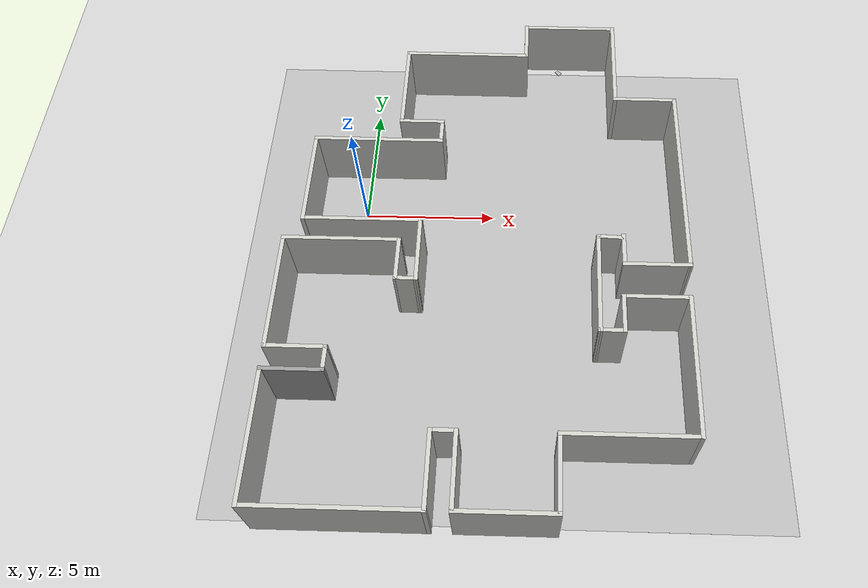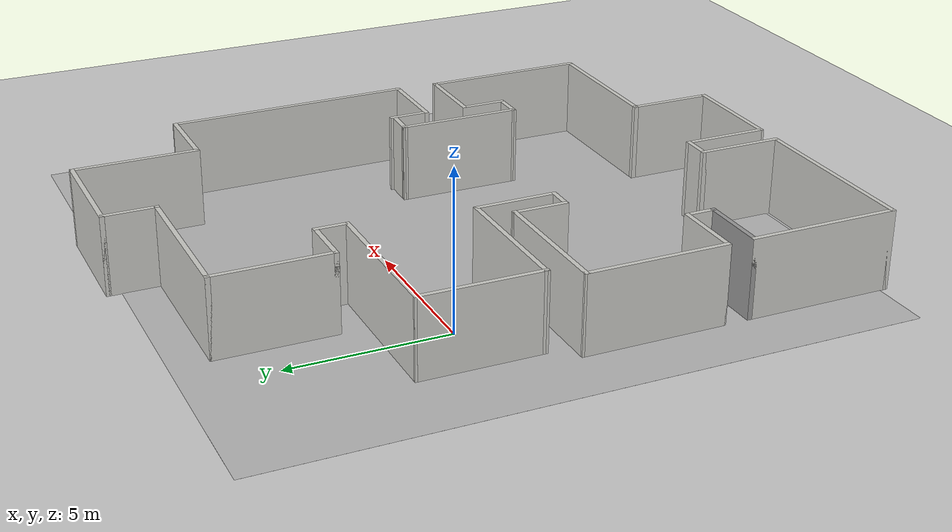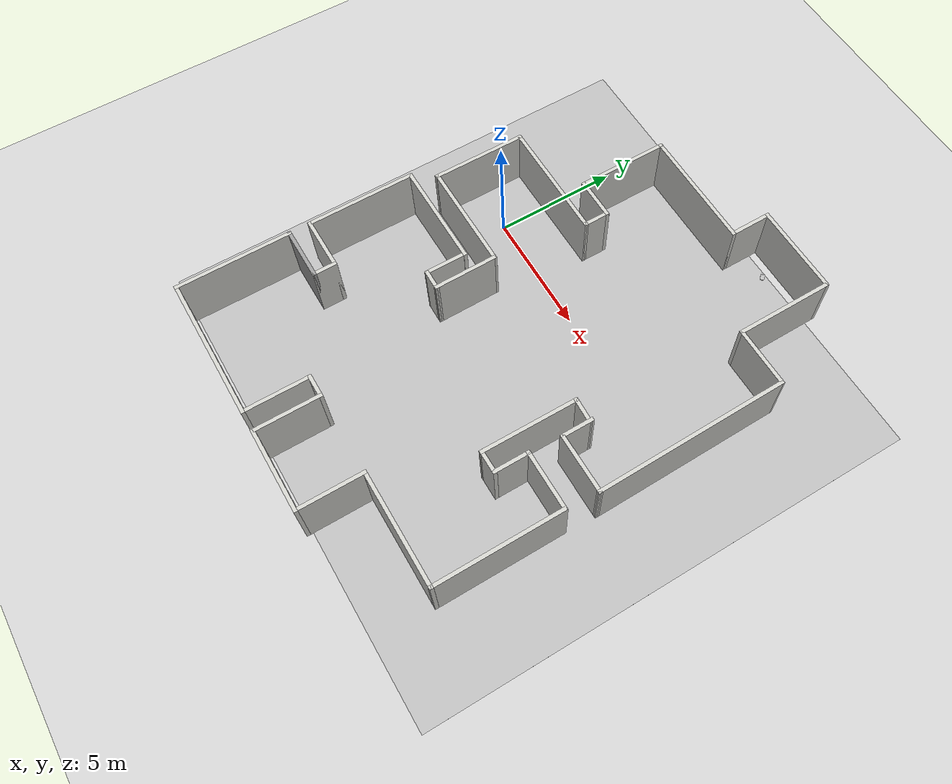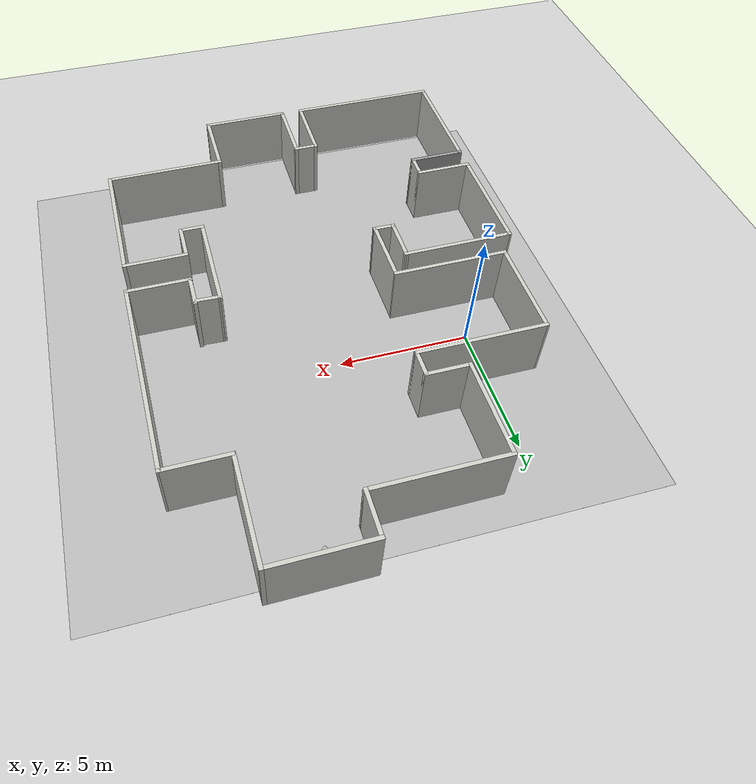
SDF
<sdf version="1.6">
 <world name="default">
  <model name="ground_plane">
   <static>1</static>
   <link name="link">
    <collision name="collision">
     <geometry><plane><normal>0 0 1</normal><size>100 100</size></plane></geometry>
     <surface><friction><ode><mu>100</mu><mu2>50</mu2></ode></friction></surface>
    </collision>
    <visual name="visual">
     <cast_shadows>0</cast_shadows>
     <geometry><plane><normal>0 0 1</normal><size>100 100</size></plane></geometry>
     <material>
      <script><uri>file://media/materials/scripts/gazebo.material</uri><name>Gazebo/Grey</name></script>
     </material>
    </visual>
   </link>
  </model>
  <model name="six_rooms_mathias">
   <model name="six_rooms">
    <model name="six_rooms">
     <pose>3e-06 -2e-06 0 0 -0 0</pose>
     <link name="Wall_10">
      <collision name="Wall_10_Collision">
       <geometry><box><size>2.25 0.15 2.5</size></box></geometry>
       <pose>0 0 1.25 0 -0 0</pose>
      </collision>
      <visual name="Wall_10_Visual">
       <pose>0 0 1.25 0 -0 0</pose>
       <geometry><box><size>2.25 0.15 2.5</size></box></geometry>
       <material>
        <script><uri>file://media/materials/scripts/gazebo.material</uri><name>Gazebo/CeilingTiled</name></script>
        <ambient>1 1 1 1</ambient>
       </material>
       <meta><layer>0</layer></meta>
      </visual>
      <pose>4.825 -6.31896 0 0 -0 1.5708</pose>
     </link>
     <link name="Wall_11">
      <collision name="Wall_11_Collision">
       <geometry><box><size>1 0.15 2.5</size></box></geometry>
       <pose>0 0 1.25 0 -0 0</pose>
      </collision>
      <visual name="Wall_11_Visual">
       <pose>0 0 1.25 0 -0 0</pose>
       <geometry><box><size>1 0.15 2.5</size></box></geometry>
       <material>
        <script><uri>file://media/materials/scripts/gazebo.material</uri><name>Gazebo/CeilingTiled</name></script>
        <ambient>1 1 1 1</ambient>
       </material>
       <meta><layer>0</layer></meta>
      </visual>
      <pose>5.25 -5.26896 0 0 -0 0</pose>
     </link>
     <link name="Wall_12">
      <collision name="Wall_12_Collision">
       <geometry><box><size>2.25 0.15 2.5</size></box></geometry>
       <pose>0 0 1.25 0 -0 0</pose>
      </collision>
      <visual name="Wall_12_Visual">
       <pose>0 0 1.25 0 -0 0</pose>
       <geometry><box><size>2.25 0.15 2.5</size></box></geometry>
       <material>
        <script><uri>file://media/materials/scripts/gazebo.material</uri><name>Gazebo/Grey</name></script>
        <ambient>1 1 1 1</ambient>
       </material>
       <meta><layer>0</layer></meta>
      </visual>
      <pose>5.675 -6.31896 0 0 -0 -1.5708</pose>
     </link>
     <link name="Wall_13">
      <collision name="Wall_13_Collision">
       <geometry><box><size>4.75 0.15 2.5</size></box></geometry>
       <pose>0 0 1.25 0 -0 0</pose>
      </collision>
      <visual name="Wall_13_Visual">
       <pose>0 0 1.25 0 -0 0</pose>
       <geometry><box><size>4.75 0.15 2.5</size></box></geometry>
       <material>
        <script><uri>file://media/materials/scripts/gazebo.material</uri><name>Gazebo/CeilingTiled</name></script>
        <ambient>1 1 1 1</ambient>
       </material>
       <meta><layer>0</layer></meta>
      </visual>
      <pose>7.975 -7.36896 0 0 -0 0</pose>
     </link>
     <link name="Wall_14">
      <collision name="Wall_14_Collision">
       <geometry><box><size>6 0.15 2.5</size></box></geometry>
       <pose>0 0 1.25 0 -0 0</pose>
      </collision>
      <visual name="Wall_14_Visual">
       <pose>0 0 1.25 0 -0 0</pose>
       <geometry><box><size>6 0.15 2.5</size></box></geometry>
       <material>
        <script><uri>file://media/materials/scripts/gazebo.material</uri><name>Gazebo/CeilingTiled</name></script>
        <ambient>1 1 1 1</ambient>
       </material>
       <meta><layer>0</layer></meta>
      </visual>
      <pose>10.275 -4.44396 0 0 -0 1.5708</pose>
     </link>
     <link name="Wall_15">
      <collision name="Wall_15_Collision">
       <geometry><box><size>2.75 0.15 2.5</size></box></geometry>
       <pose>0 0 1.25 0 -0 0</pose>
      </collision>
      <visual name="Wall_15_Visual">
       <pose>0 0 1.25 0 -0 0</pose>
       <geometry><box><size>2.75 0.15 2.5</size></box></geometry>
       <material>
        <script><uri>file://media/materials/scripts/gazebo.material</uri><name>Gazebo/CeilingTiled</name></script>
        <ambient>1 1 1 1</ambient>
       </material>
       <meta><layer>0</layer></meta>
      </visual>
      <pose>8.975 -1.51896 0 0 -0 3.14159</pose>
     </link>
     <link name="Wall_16">
      <collision name="Wall_16_Collision">
       <geometry><box><size>1 0.15 2.5</size></box></geometry>
       <pose>0 0 1.25 0 -0 0</pose>
      </collision>
      <visual name="Wall_16_Visual">
       <pose>0 0 1.25 0 -0 0</pose>
       <geometry><box><size>1 0.15 2.5</size></box></geometry>
       <material>
        <script><uri>file://media/materials/scripts/gazebo.material</uri><name>Gazebo/CeilingTiled</name></script>
        <ambient>1 1 1 1</ambient>
       </material>
       <meta><layer>0</layer></meta>
      </visual>
      <pose>7.675 -1.09396 0 0 -0 1.5708</pose>
     </link>
     <link name="Wall_17">
      <collision name="Wall_17_Collision">
       <geometry><box><size>2.66863 0.15 2.5</size></box></geometry>
       <pose>0 0 1.25 0 -0 0</pose>
      </collision>
      <visual name="Wall_17_Visual">
       <pose>0 0 1.25 0 -0 0</pose>
       <geometry><box><size>2.66863 0.15 2.5</size></box></geometry>
       <material>
        <script><uri>file://media/materials/scripts/gazebo.material</uri><name>Gazebo/CeilingTiled</name></script>
        <ambient>1 1 1 1</ambient>
       </material>
       <meta><layer>0</layer></meta>
      </visual>
      <pose>8.93431 -0.668964 0 0 -0 0</pose>
     </link>
     <link name="Wall_18">
      <collision name="Wall_18_Collision">
       <geometry><box><size>3.5 0.15 2.5</size></box></geometry>
       <pose>0 0 1.25 0 -0 0</pose>
      </collision>
      <visual name="Wall_18_Visual">
       <pose>0 0 1.25 0 -0 0</pose>
       <geometry><box><size>3.5 0.15 2.5</size></box></geometry>
       <material>
        <script><uri>file://media/materials/scripts/gazebo.material</uri><name>Gazebo/CeilingTiled</name></script>
        <ambient>1 1 1 1</ambient>
       </material>
       <meta><layer>0</layer></meta>
      </visual>
      <pose>10.275 1.00604 0 0 -0 1.5708</pose>
     </link>
     <link name="Wall_19">
      <collision name="Wall_19_Collision">
       <geometry><box><size>2.66863 0.15 2.5</size></box></geometry>
       <pose>0 0 1.25 0 -0 0</pose>
      </collision>
      <visual name="Wall_19_Visual">
       <pose>0 0 1.25 0 -0 0</pose>
       <geometry><box><size>2.66863 0.15 2.5</size></box></geometry>
       <material>
        <script><uri>file://media/materials/scripts/gazebo.material</uri><name>Gazebo/CeilingTiled</name></script>
        <ambient>1 1 1 1</ambient>
       </material>
       <meta><layer>0</layer></meta>
      </visual>
      <pose>8.93431 2.68104 0 0 -0 3.14159</pose>
     </link>
     <link name="Wall_2">
      <collision name="Wall_2_Collision">
       <geometry><box><size>5 0.15 2.5</size></box></geometry>
       <pose>0 0 1.25 0 -0 0</pose>
      </collision>
      <visual name="Wall_2_Visual">
       <pose>0 0 1.25 0 -0 0</pose>
       <geometry><box><size>5 0.15 2.5</size></box></geometry>
       <material>
        <script><uri>file://media/materials/scripts/gazebo.material</uri><name>Gazebo/CeilingTiled</name></script>
        <ambient>1 1 1 1</ambient>
       </material>
       <meta><layer>0</layer></meta>
      </visual>
      <pose>-4.125 -4.34396 0 0 -0 -1.5708</pose>
     </link>
     <link name="Wall_20">
      <collision name="Wall_20_Collision">
       <geometry><box><size>4.75 0.15 2.5</size></box></geometry>
       <pose>0 0 1.25 0 -0 0</pose>
      </collision>
      <visual name="Wall_20_Visual">
       <pose>0 0 1.25 0 -0 0</pose>
       <geometry><box><size>4.75 0.15 2.5</size></box></geometry>
       <material>
        <script><uri>file://media/materials/scripts/gazebo.material</uri><name>Gazebo/CeilingTiled</name></script>
        <ambient>1 1 1 1</ambient>
       </material>
       <meta><layer>0</layer></meta>
      </visual>
      <pose>7.675 4.98104 0 0 -0 1.5708</pose>
     </link>
     <link name="Wall_21">
      <collision name="Wall_21_Collision">
       <geometry><box><size>5.25 0.15 2.5</size></box></geometry>
       <pose>0 0 1.25 0 -0 0</pose>
      </collision>
      <visual name="Wall_21_Visual">
       <pose>0 0 1.25 0 -0 0</pose>
       <geometry><box><size>5.25 0.15 2.5</size></box></geometry>
       <material>
        <script><uri>file://media/materials/scripts/gazebo.material</uri><name>Gazebo/CeilingTiled</name></script>
        <ambient>1 1 1 1</ambient>
       </material>
       <meta><layer>0</layer></meta>
      </visual>
      <pose>5.125 7.28104 0 0 -0 3.14159</pose>
     </link>
     <link name="Wall_22">
      <collision name="Wall_22_Collision">
       <geometry><box><size>2.5 0.15 2.5</size></box></geometry>
       <pose>0 0 1.25 0 -0 0</pose>
      </collision>
      <visual name="Wall_22_Visual">
       <pose>0 0 1.25 0 -0 0</pose>
       <geometry><box><size>2.5 0.15 2.5</size></box></geometry>
       <material>
        <script><uri>file://media/materials/scripts/gazebo.material</uri><name>Gazebo/CeilingTiled</name></script>
        <ambient>1 1 1 1</ambient>
       </material>
       <meta><layer>0</layer></meta>
      </visual>
      <pose>2.575 6.10604 0 0 -0 -1.5708</pose>
     </link>
     <link name="Wall_23">
      <collision name="Wall_23_Collision">
       <geometry><box><size>1.5 0.15 2.5</size></box></geometry>
       <pose>0 0 1.25 0 -0 0</pose>
      </collision>
      <visual name="Wall_23_Visual">
       <pose>0 0 1.25 0 -0 0</pose>
       <geometry><box><size>1.5 0.15 2.5</size></box></geometry>
       <material>
        <script><uri>file://media/materials/scripts/gazebo.material</uri><name>Gazebo/CeilingTiled</name></script>
        <ambient>1 1 1 1</ambient>
       </material>
       <meta><layer>0</layer></meta>
      </visual>
      <pose>3.25 4.93103 0 0 -0 0</pose>
     </link>
     <link name="Wall_24">
      <collision name="Wall_24_Collision">
       <geometry><box><size>1 0.15 2.5</size></box></geometry>
       <pose>0 0 1.25 0 -0 0</pose>
      </collision>
      <visual name="Wall_24_Visual">
       <pose>0 0 1.25 0 -0 0</pose>
       <geometry><box><size>1 0.15 2.5</size></box></geometry>
       <material>
        <script><uri>file://media/materials/scripts/gazebo.material</uri><name>Gazebo/CeilingTiled</name></script>
        <ambient>1 1 1 1</ambient>
       </material>
       <meta><layer>0</layer></meta>
      </visual>
      <pose>3.925 4.50604 0 0 -0 -1.5708</pose>
     </link>
     <link name="Wall_25">
      <collision name="Wall_25_Collision">
       <geometry><box><size>3.95187 0.15 2.5</size></box></geometry>
       <pose>0 0 1.25 0 -0 0</pose>
      </collision>
      <visual name="Wall_25_Visual">
       <pose>0 0 1.25 0 -0 0</pose>
       <geometry><box><size>3.95187 0.15 2.5</size></box></geometry>
       <material>
        <script><uri>file://media/materials/scripts/gazebo.material</uri><name>Gazebo/CeilingTiled</name></script>
        <ambient>1 1 1 1</ambient>
       </material>
       <meta><layer>0</layer></meta>
      </visual>
      <pose>2.0241 4.09246 0 0 -0 3.13558</pose>
     </link>
     <link name="Wall_26">
      <collision name="Wall_26_Collision">
       <geometry><box><size>1.06501 0.15 2.5</size></box></geometry>
       <pose>0 0 1.25 0 -0 0</pose>
      </collision>
      <visual name="Wall_26_Visual">
       <pose>0 0 1.25 0 -0 0</pose>
       <geometry><box><size>1.06501 0.15 2.5</size></box></geometry>
       <material>
        <script><uri>file://media/materials/scripts/gazebo.material</uri><name>Gazebo/CeilingTiled</name></script>
        <ambient>1 1 1 1</ambient>
       </material>
       <meta><layer>0</layer></meta>
      </visual>
      <pose>0.139782 4.56109 0 0 -0 1.53453</pose>
     </link>
     <link name="Wall_27">
      <collision name="Wall_27_Collision">
       <geometry><box><size>1.25 0.15 2.5</size></box></geometry>
       <pose>0 0 1.25 0 -0 0</pose>
      </collision>
      <visual name="Wall_27_Visual">
       <pose>0 0 1.25 0 -0 0</pose>
       <geometry><box><size>1.25 0.15 2.5</size></box></geometry>
       <material>
        <script><uri>file://media/materials/scripts/gazebo.material</uri><name>Gazebo/CeilingTiled</name></script>
        <ambient>1 1 1 1</ambient>
       </material>
       <meta><layer>0</layer></meta>
      </visual>
      <pose>0.625 5.0183 0 0 -0 0</pose>
     </link>
     <link name="Wall_28">
      <collision name="Wall_28_Collision">
       <geometry><box><size>2.5 0.15 2.5</size></box></geometry>
       <pose>0 0 1.25 0 -0 0</pose>
      </collision>
      <visual name="Wall_28_Visual">
       <pose>0 0 1.25 0 -0 0</pose>
       <geometry><box><size>2.5 0.15 2.5</size></box></geometry>
       <material>
        <script><uri>file://media/materials/scripts/gazebo.material</uri><name>Gazebo/CeilingTiled</name></script>
        <ambient>1 1 1 1</ambient>
       </material>
       <meta><layer>0</layer></meta>
      </visual>
      <pose>1.25637 6.19329 0 0 -0 1.5708</pose>
     </link>
     <link name="Wall_29">
      <collision name="Wall_29_Collision">
       <geometry><box><size>7.83187 0.15 2.5</size></box></geometry>
       <pose>0 0 1.25 0 -0 0</pose>
      </collision>
      <visual name="Wall_29_Visual">
       <pose>0 0 1.25 0 -0 0</pose>
       <geometry><box><size>7.83187 0.15 2.5</size></box></geometry>
       <material>
        <script><uri>file://media/materials/scripts/gazebo.material</uri><name>Gazebo/CeilingTiled</name></script>
        <ambient>1 1 1 1</ambient>
       </material>
       <meta><layer>0</layer></meta>
      </visual>
      <pose>-2.58432 7.32467 0 0 -0 -3.13023</pose>
     </link>
     <link name="Wall_3">
      <collision name="Wall_3_Collision">
       <geometry><box><size>3.88482 0.15 2.5</size></box></geometry>
       <pose>0 0 1.25 0 -0 0</pose>
      </collision>
      <visual name="Wall_3_Visual">
       <pose>0 0 1.25 0 -0 0</pose>
       <geometry><box><size>3.88482 0.15 2.5</size></box></geometry>
       <material>
        <script><uri>file://media/materials/scripts/gazebo.material</uri><name>Gazebo/CeilingTiled</name></script>
        <ambient>1 1 1 1</ambient>
       </material>
       <meta><layer>0</layer></meta>
      </visual>
      <pose>-2.25761 -6.77771 0 0 -0 -0.004683</pose>
     </link>
     <link name="Wall_30">
      <collision name="Wall_30_Collision">
       <geometry><box><size>2.5 0.15 2.5</size></box></geometry>
       <pose>0 0 1.25 0 -0 0</pose>
      </collision>
      <visual name="Wall_30_Visual">
       <pose>0 0 1.25 0 -0 0</pose>
       <geometry><box><size>2.5 0.15 2.5</size></box></geometry>
       <material>
        <script><uri>file://media/materials/scripts/gazebo.material</uri><name>Gazebo/CeilingTiled</name></script>
        <ambient>1 1 1 1</ambient>
       </material>
       <meta><layer>0</layer></meta>
      </visual>
      <pose>-6.425 6.10604 0 0 -0 -1.5708</pose>
     </link>
     <link name="Wall_31">
      <collision name="Wall_31_Collision">
       <geometry><box><size>4 0.15 2.5</size></box></geometry>
       <pose>0 0 1.25 0 -0 0</pose>
      </collision>
      <visual name="Wall_31_Visual">
       <pose>0 0 1.25 0 -0 0</pose>
       <geometry><box><size>4 0.15 2.5</size></box></geometry>
       <material>
        <script><uri>file://media/materials/scripts/gazebo.material</uri><name>Gazebo/CeilingTiled</name></script>
        <ambient>1 1 1 1</ambient>
       </material>
       <meta><layer>0</layer></meta>
      </visual>
      <pose>-8.35 4.93103 0 0 -0 3.14159</pose>
     </link>
     <link name="Wall_32">
      <collision name="Wall_32_Collision">
       <geometry><box><size>3.75 0.15 2.5</size></box></geometry>
       <pose>0 0 1.25 0 -0 0</pose>
      </collision>
      <visual name="Wall_32_Visual">
       <pose>0 0 1.25 0 -0 0</pose>
       <geometry><box><size>3.75 0.15 2.5</size></box></geometry>
       <material>
        <script><uri>file://media/materials/scripts/gazebo.material</uri><name>Gazebo/CeilingTiled</name></script>
        <ambient>1 1 1 1</ambient>
       </material>
       <meta><layer>0</layer></meta>
      </visual>
      <pose>-10.275 3.13104 0 0 -0 -1.5708</pose>
     </link>
     <link name="Wall_33">
      <collision name="Wall_33_Collision">
       <geometry><box><size>1.75 0.15 2.5</size></box></geometry>
       <pose>0 0 1.25 0 -0 0</pose>
      </collision>
      <visual name="Wall_33_Visual">
       <pose>0 0 1.25 0 -0 0</pose>
       <geometry><box><size>1.75 0.15 2.5</size></box></geometry>
       <material>
        <script><uri>file://media/materials/scripts/gazebo.material</uri><name>Gazebo/CeilingTiled</name></script>
        <ambient>1 1 1 1</ambient>
       </material>
       <meta><layer>0</layer></meta>
      </visual>
      <pose>-9.475 1.33104 0 0 -0 0</pose>
     </link>
     <link name="Wall_34">
      <collision name="Wall_34_Collision">
       <geometry><box><size>5 0.15 2.5</size></box></geometry>
       <pose>0 0 1.25 0 -0 0</pose>
      </collision>
      <visual name="Wall_34_Visual">
       <pose>0 0 1.25 0 -0 0</pose>
       <geometry><box><size>5 0.15 2.5</size></box></geometry>
       <material>
        <script><uri>file://media/materials/scripts/gazebo.material</uri><name>Gazebo/CeilingTiled</name></script>
        <ambient>1 1 1 1</ambient>
       </material>
       <meta><layer>0</layer></meta>
      </visual>
      <pose>-8.675 -1.09396 0 0 -0 -1.5708</pose>
     </link>
     <link name="Wall_35">
      <collision name="Wall_35_Collision">
       <geometry><box><size>3.75 0.15 2.5</size></box></geometry>
       <pose>0 0 1.25 0 -0 0</pose>
      </collision>
      <visual name="Wall_35_Visual">
       <pose>0 0 1.25 0 -0 0</pose>
       <geometry><box><size>3.75 0.15 2.5</size></box></geometry>
       <material>
        <script><uri>file://media/materials/scripts/gazebo.material</uri><name>Gazebo/CeilingTiled</name></script>
        <ambient>1 1 1 1</ambient>
       </material>
       <meta><layer>0</layer></meta>
      </visual>
      <pose>-6.875 -3.51896 0 0 -0 0</pose>
     </link>
     <link name="Wall_36">
      <collision name="Wall_36_Collision">
       <geometry><box><size>1.75 0.15 2.5</size></box></geometry>
       <pose>0 0 1.25 0 -0 0</pose>
      </collision>
      <visual name="Wall_36_Visual">
       <pose>0 0 1.25 0 -0 0</pose>
       <geometry><box><size>1.75 0.15 2.5</size></box></geometry>
       <material>
        <script><uri>file://media/materials/scripts/gazebo.material</uri><name>Gazebo/CeilingTiled</name></script>
        <ambient>1 1 1 1</ambient>
       </material>
       <meta><layer>0</layer></meta>
      </visual>
      <pose>-5.075 -2.71896 0 0 -0 1.5708</pose>
     </link>
     <link name="Wall_37">
      <collision name="Wall_37_Collision">
       <geometry><box><size>1.1 0.15 2.5</size></box></geometry>
       <pose>0 0 1.25 0 -0 0</pose>
      </collision>
      <visual name="Wall_37_Visual">
       <pose>0 0 1.25 0 -0 0</pose>
       <geometry><box><size>1.1 0.15 2.5</size></box></geometry>
       <material>
        <script><uri>file://media/materials/scripts/gazebo.material</uri><name>Gazebo/CeilingTiled</name></script>
        <ambient>1 1 1 1</ambient>
       </material>
       <meta><layer>0</layer></meta>
      </visual>
      <pose>-4.6 -1.91896 0 0 -0 0</pose>
     </link>
     <link name="Wall_4">
      <collision name="Wall_4_Collision">
       <geometry><box><size>4.5 0.15 2.5</size></box></geometry>
       <pose>0 0 1.25 0 -0 0</pose>
      </collision>
      <visual name="Wall_4_Visual">
       <pose>0 0 1.25 0 -0 0</pose>
       <geometry><box><size>4.5 0.15 2.5</size></box></geometry>
       <material>
        <script><uri>file://media/materials/scripts/gazebo.material</uri><name>Gazebo/CeilingTiled</name></script>
        <ambient>1 1 1 1</ambient>
       </material>
       <meta><layer>0</layer></meta>
      </visual>
      <pose>-0.407709 -4.61145 0 0 -0 1.5708</pose>
     </link>
     <link name="Wall_5">
      <collision name="Wall_5_Collision">
       <geometry><box><size>2.61528 0.15 2.5</size></box></geometry>
       <pose>0 0 1.25 0 -0 0</pose>
      </collision>
      <visual name="Wall_5_Visual">
       <pose>0 0 1.25 0 -0 0</pose>
       <geometry><box><size>2.61528 0.15 2.5</size></box></geometry>
       <material>
        <script><uri>file://media/materials/scripts/gazebo.material</uri><name>Gazebo/CeilingTiled</name></script>
        <ambient>1 1 1 1</ambient>
       </material>
       <meta><layer>0</layer></meta>
      </visual>
      <pose>0.84239 -2.42771 0 0 -0 0.007095</pose>
     </link>
     <link name="Wall_6">
      <collision name="Wall_6_Collision">
       <geometry><box><size>0.870069 0.15 2.5</size></box></geometry>
       <pose>0 0 1.25 0 -0 0</pose>
      </collision>
      <visual name="Wall_6_Visual">
       <pose>0 0 1.25 0 -0 0</pose>
       <geometry><box><size>0.870069 0.15 2.5</size></box></geometry>
       <material>
        <script><uri>file://media/materials/scripts/gazebo.material</uri><name>Gazebo/CeilingTiled</name></script>
        <ambient>1 1 1 1</ambient>
       </material>
       <meta><layer>0</layer></meta>
      </visual>
      <pose>2.07 -2.77896 0 0 -0 -1.58468</pose>
     </link>
     <link name="Wall_7">
      <collision name="Wall_7_Collision">
       <geometry><box><size>1.75 0.15 2.5</size></box></geometry>
       <pose>0 0 1.25 0 -0 0</pose>
      </collision>
      <visual name="Wall_7_Visual">
       <pose>0 0 1.25 0 -0 0</pose>
       <geometry><box><size>1.75 0.15 2.5</size></box></geometry>
       <material>
        <script><uri>file://media/materials/scripts/gazebo.material</uri><name>Gazebo/CeilingTiled</name></script>
        <ambient>1 1 1 1</ambient>
       </material>
       <meta><layer>0</layer></meta>
      </visual>
      <pose>1.265 -3.14896 0 0 -0 3.14159</pose>
     </link>
     <link name="Wall_8">
      <collision name="Wall_8_Collision">
       <geometry><box><size>4.38001 0.15 2.5</size></box></geometry>
       <pose>0 0 1.25 0 -0 0</pose>
      </collision>
      <visual name="Wall_8_Visual">
       <pose>0 0 1.25 0 -0 0</pose>
       <geometry><box><size>4.38001 0.15 2.5</size></box></geometry>
       <material>
        <script><uri>file://media/materials/scripts/gazebo.material</uri><name>Gazebo/CeilingTiled</name></script>
        <ambient>1 1 1 1</ambient>
       </material>
       <meta><layer>0</layer></meta>
      </visual>
      <pose>0.47 -5.25396 0 0 -0 -1.56843</pose>
     </link>
     <link name="Wall_9">
      <collision name="Wall_9_Collision">
       <geometry><box><size>4.5 0.15 2.5</size></box></geometry>
       <pose>0 0 1.25 0 -0 0</pose>
      </collision>
      <visual name="Wall_9_Visual">
       <pose>0 0 1.25 0 -0 0</pose>
       <geometry><box><size>4.5 0.15 2.5</size></box></geometry>
       <material>
        <script><uri>file://media/materials/scripts/gazebo.material</uri><name>Gazebo/CeilingTiled</name></script>
        <ambient>1 1 1 1</ambient>
       </material>
       <meta><layer>0</layer></meta>
      </visual>
      <pose>2.65 -7.36896 0 0 -0 0</pose>
     </link>
     <static>1</static>
    </model>
    <static>0</static>
    <pose>0 4e-06 0 0 0 -1.5708</pose>
   </model>
   <static>0</static>
   <pose>4.83611 -2.17799 0 0 -0 0</pose>
  </model>
  <model name="Untitled_14">
   <model name="Floor_room">
    <link name="main">
     <pose>0 0 0.01 0 -0 0</pose>
     <collision name="main_Collision"><geometry><box><size>20 20 0.001</size></box></geometry></collision>
     <visual name="main_Visual">
      <geometry><box><size>20 20 0.001</size></box></geometry>
      <material>
       <script>
        <uri>model://Floor_room/materials/scripts</uri>
        <uri>model://Floor_room/materials/textures</uri>
        <name>floor_room</name>
       </script>
      </material>
     </visual>
    </link>
    <static>1</static>
    <pose>1e-06 -5e-06 0 0 -0 0</pose>
   </model>
   <static>0</static>
   <pose>5.5324 -2.28083 -0 0 0 -1.5708</pose>
  </model>
  <model name="Untitled_3_clone">
   <model name="book_12">
    <link name="cover">
     <pose>0 -0.000108 0.015405 0 -0 0</pose>
     <visual name="visual">
      <geometry><box><size>0.245 0.16 0.03</size></box></geometry>
      <material>
       <script>
        <uri>model://book_12/materials/scripts</uri>
        <uri>model://book_12/materials/textures</uri>
        <name>book_12</name>
       </script>
      </material>
     </visual>
     <collision name="collision"><geometry><box><size>0.245 0.16 0.03</size></box></geometry></collision>
    </link>
    <link name="page">
     <pose>0 0.000608 0.015405 0 -0 0</pose>
     <visual name="visual">
      <geometry><box><size>0.24502 0.15862 0.028</size></box></geometry>
      <material>
       <lighting>1</lighting>
       <ambient>1 1 1 1</ambient>
       <diffuse>1 1 1 1</diffuse>
       <specular>0.01 0.01 0.01 1</specular>
       <emissive>0 0 0 1</emissive>
       <shader type="vertex"><normal_map>__default__</normal_map></shader>
      </material>
     </visual>
     <collision name="collision"><geometry><box><size>0.245 0.16 0.03</size></box></geometry></collision>
    </link>
    <static>1</static>
    <pose>4e-06 3e-06 0 0 -0 0</pose>
   </model>
   <static>0</static>
   <pose>7.5789 7.23009 0.640116 -4e-06 5e-06 2.29914</pose>
  </model>
 </world>
</sdf>
